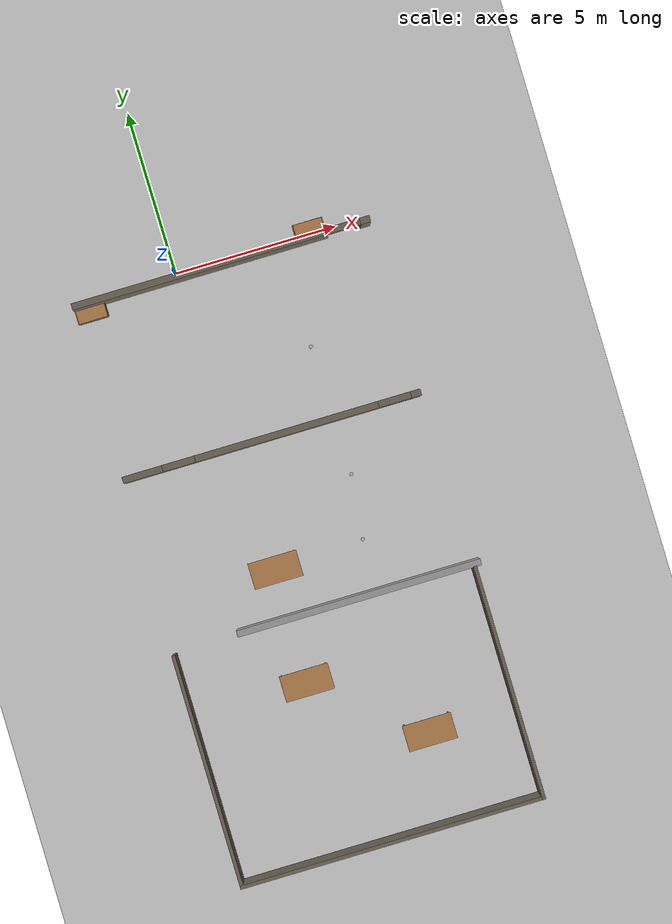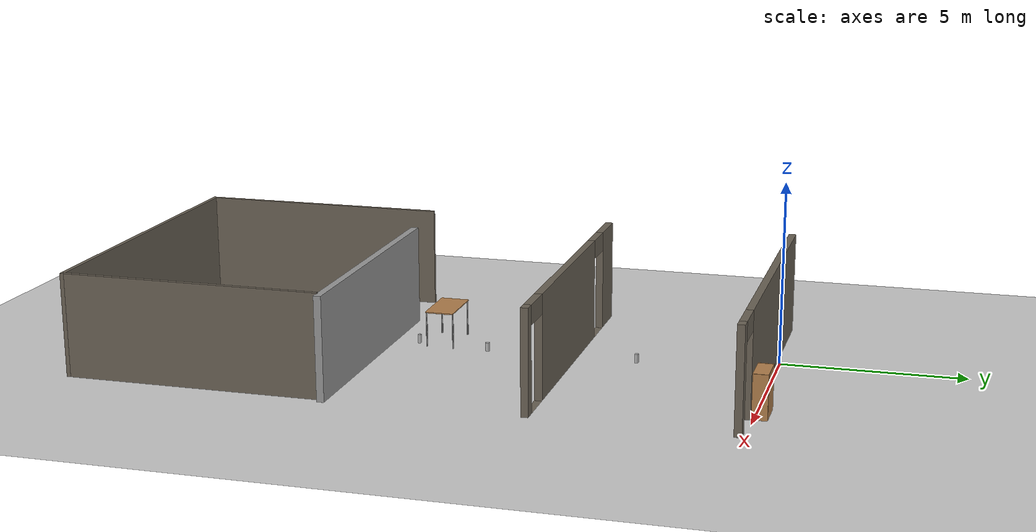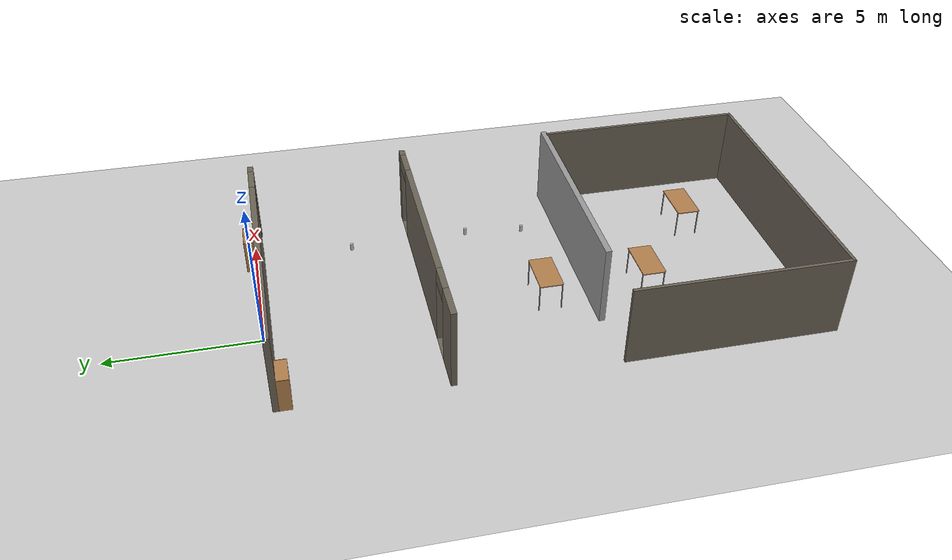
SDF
<sdf version="1.7">
 <world name="default">
  <model name="ground_plane">
   <static>1</static>
   <link name="link">
    <collision name="collision">
     <geometry><plane><normal>0 0 1</normal><size>100 100</size></plane></geometry>
     <surface><friction><ode><mu>100</mu><mu2>50</mu2></ode></friction></surface>
    </collision>
    <visual name="visual">
     <cast_shadows>0</cast_shadows>
     <geometry><plane><normal>0 0 1</normal><size>100 100</size></plane></geometry>
     <material>
      <script><uri>file://media/materials/scripts/gazebo.material</uri><name>Gazebo/Grey</name></script>
     </material>
    </visual>
   </link>
  </model>
  <model name="table">
   <static>1</static>
   <link name="link">
    <collision name="surface">
     <pose>0 0 1 0 -0 0</pose>
     <geometry><box><size>1.5 0.8 0.03</size></box></geometry>
     <surface><friction><ode><mu>0.6</mu><mu2>0.6</mu2></ode></friction></surface>
    </collision>
    <visual name="visual1">
     <pose>0 0 1 0 -0 0</pose>
     <geometry><box><size>1.5 0.8 0.03</size></box></geometry>
     <material>
      <script><uri>file://media/materials/scripts/gazebo.material</uri><name>Gazebo/Wood</name></script>
     </material>
    </visual>
    <collision name="front_left_leg">
     <pose>0.68 0.38 0.5 0 -0 0</pose>
     <geometry><cylinder><radius>0.02</radius><length>1</length></cylinder></geometry>
    </collision>
    <visual name="front_left_leg">
     <pose>0.68 0.38 0.5 0 -0 0</pose>
     <geometry><cylinder><radius>0.02</radius><length>1</length></cylinder></geometry>
     <material>
      <script><uri>file://media/materials/scripts/gazebo.material</uri><name>Gazebo/Grey</name></script>
     </material>
    </visual>
    <collision name="front_right_leg">
     <pose>0.68 -0.38 0.5 0 -0 0</pose>
     <geometry><cylinder><radius>0.02</radius><length>1</length></cylinder></geometry>
    </collision>
    <visual name="front_right_leg">
     <pose>0.68 -0.38 0.5 0 -0 0</pose>
     <geometry><cylinder><radius>0.02</radius><length>1</length></cylinder></geometry>
     <material>
      <script><uri>file://media/materials/scripts/gazebo.material</uri><name>Gazebo/Grey</name></script>
     </material>
    </visual>
    <collision name="back_right_leg">
     <pose>-0.68 -0.38 0.5 0 -0 0</pose>
     <geometry><cylinder><radius>0.02</radius><length>1</length></cylinder></geometry>
    </collision>
    <visual name="back_right_leg">
     <pose>-0.68 -0.38 0.5 0 -0 0</pose>
     <geometry><cylinder><radius>0.02</radius><length>1</length></cylinder></geometry>
     <material>
      <script><uri>file://media/materials/scripts/gazebo.material</uri><name>Gazebo/Grey</name></script>
     </material>
    </visual>
    <collision name="back_left_leg">
     <pose>-0.68 0.38 0.5 0 -0 0</pose>
     <geometry><cylinder><radius>0.02</radius><length>1</length></cylinder></geometry>
    </collision>
    <visual name="back_left_leg">
     <pose>-0.68 0.38 0.5 0 -0 0</pose>
     <geometry><cylinder><radius>0.02</radius><length>1</length></cylinder></geometry>
     <material>
      <script><uri>file://media/materials/scripts/gazebo.material</uri><name>Gazebo/Grey</name></script>
     </material>
    </visual>
   </link>
   <pose>0.349528 -9.32869 0 0 -0 0</pose>
  </model>
  <model name="beer">
   <link name="link">
    <pose>0 0 0.115 0 -0 0</pose>
    <inertial>
     <mass>0.39</mass>
     <inertia><ixx>0.00058</ixx><ixy>0</ixy><ixz>0</ixz><iyy>0.00058</iyy><iyz>0</iyz><izz>0.00019</izz></inertia>
    </inertial>
    <collision name="collision">
     <geometry><cylinder><radius>0.055</radius><length>0.23</length></cylinder></geometry>
    </collision>
    <visual name="visual">
     <geometry><cylinder><radius>0.055</radius><length>0.23</length></cylinder></geometry>
     <material>
      <script>
       <uri>model://beer/materials/scripts</uri>
       <uri>model://beer/materials/textures</uri>
       <name>Beer/Diffuse</name>
      </script>
     </material>
    </visual>
   </link>
   <pose>3.09991 -9.20004 0.77499 1e-06 -2.7e-05 0.03066</pose>
  </model>
  <model name="beer_0">
   <link name="link">
    <pose>0 0 0.115 0 -0 0</pose>
    <inertial>
     <mass>0.39</mass>
     <inertia><ixx>0.00058</ixx><ixy>0</ixy><ixz>0</ixz><iyy>0.00058</iyy><iyz>0</iyz><izz>0.00019</izz></inertia>
    </inertial>
    <collision name="collision">
     <geometry><cylinder><radius>0.055</radius><length>0.23</length></cylinder></geometry>
    </collision>
    <visual name="visual">
     <geometry><cylinder><radius>0.055</radius><length>0.23</length></cylinder></geometry>
     <material>
      <script>
       <uri>model://beer/materials/scripts</uri>
       <uri>model://beer/materials/textures</uri>
       <name>Beer/Diffuse</name>
      </script>
     </material>
    </visual>
   </link>
   <pose>3.2523 -3.266 0.774992 -1e-06 2.7e-05 0.018732</pose>
  </model>
  <model name="table_1">
   <static>1</static>
   <link name="link">
    <collision name="surface">
     <pose>0 0 1 0 -0 0</pose>
     <geometry><box><size>1.5 0.8 0.03</size></box></geometry>
     <surface><friction><ode><mu>0.6</mu><mu2>0.6</mu2></ode></friction></surface>
    </collision>
    <visual name="visual1">
     <pose>0 0 1 0 -0 0</pose>
     <geometry><box><size>1.5 0.8 0.03</size></box></geometry>
     <material>
      <script><uri>file://media/materials/scripts/gazebo.material</uri><name>Gazebo/Wood</name></script>
     </material>
    </visual>
    <collision name="front_left_leg">
     <pose>0.68 0.38 0.5 0 -0 0</pose>
     <geometry><cylinder><radius>0.02</radius><length>1</length></cylinder></geometry>
    </collision>
    <visual name="front_left_leg">
     <pose>0.68 0.38 0.5 0 -0 0</pose>
     <geometry><cylinder><radius>0.02</radius><length>1</length></cylinder></geometry>
     <material>
      <script><uri>file://media/materials/scripts/gazebo.material</uri><name>Gazebo/Grey</name></script>
     </material>
    </visual>
    <collision name="front_right_leg">
     <pose>0.68 -0.38 0.5 0 -0 0</pose>
     <geometry><cylinder><radius>0.02</radius><length>1</length></cylinder></geometry>
    </collision>
    <visual name="front_right_leg">
     <pose>0.68 -0.38 0.5 0 -0 0</pose>
     <geometry><cylinder><radius>0.02</radius><length>1</length></cylinder></geometry>
     <material>
      <script><uri>file://media/materials/scripts/gazebo.material</uri><name>Gazebo/Grey</name></script>
     </material>
    </visual>
    <collision name="back_right_leg">
     <pose>-0.68 -0.38 0.5 0 -0 0</pose>
     <geometry><cylinder><radius>0.02</radius><length>1</length></cylinder></geometry>
    </collision>
    <visual name="back_right_leg">
     <pose>-0.68 -0.38 0.5 0 -0 0</pose>
     <geometry><cylinder><radius>0.02</radius><length>1</length></cylinder></geometry>
     <material>
      <script><uri>file://media/materials/scripts/gazebo.material</uri><name>Gazebo/Grey</name></script>
     </material>
    </visual>
    <collision name="back_left_leg">
     <pose>-0.68 0.38 0.5 0 -0 0</pose>
     <geometry><cylinder><radius>0.02</radius><length>1</length></cylinder></geometry>
    </collision>
    <visual name="back_left_leg">
     <pose>-0.68 0.38 0.5 0 -0 0</pose>
     <geometry><cylinder><radius>0.02</radius><length>1</length></cylinder></geometry>
     <material>
      <script><uri>file://media/materials/scripts/gazebo.material</uri><name>Gazebo/Grey</name></script>
     </material>
    </visual>
   </link>
   <pose>3.37991 -15.2712 0 0 -0 0</pose>
  </model>
  <model name="beer_4">
   <link name="link">
    <pose>0 0 0.115 0 -0 0</pose>
    <inertial>
     <mass>0.39</mass>
     <inertia><ixx>0.00058</ixx><ixy>0</ixy><ixz>0</ixz><iyy>0.00058</iyy><iyz>0</iyz><izz>0.00019</izz></inertia>
    </inertial>
    <collision name="collision">
     <geometry><cylinder><radius>0.055</radius><length>0.23</length></cylinder></geometry>
    </collision>
    <visual name="visual">
     <geometry><cylinder><radius>0.055</radius><length>0.23</length></cylinder></geometry>
     <material>
      <script>
       <uri>model://beer/materials/scripts</uri>
       <uri>model://beer/materials/textures</uri>
       <name>Beer/Diffuse</name>
      </script>
     </material>
    </visual>
   </link>
   <pose>3.32342 -7.24272 0.775003 4.6e-05 3e-06 0.027947</pose>
  </model>
  <model name="bookshelf_0">
   <static>1</static>
   <link name="link">
    <inertial><mass>1</mass></inertial>
    <collision name="back">
     <pose>0 0.005 0.6 0 -0 0</pose>
     <geometry><box><size>0.9 0.01 1.2</size></box></geometry>
    </collision>
    <visual name="visual1">
     <pose>0 0.005 0.6 0 -0 0</pose>
     <geometry><box><size>0.9 0.01 1.2</size></box></geometry>
     <material>
      <script><uri>file://media/materials/scripts/gazebo.material</uri><name>Gazebo/Wood</name></script>
     </material>
    </visual>
    <collision name="left_side">
     <pose>0.45 -0.195 0.6 0 -0 0</pose>
     <geometry><box><size>0.02 0.4 1.2</size></box></geometry>
    </collision>
    <visual name="visual2">
     <pose>0.45 -0.195 0.6 0 -0 0</pose>
     <geometry><box><size>0.02 0.4 1.2</size></box></geometry>
     <material>
      <script><uri>file://media/materials/scripts/gazebo.material</uri><name>Gazebo/Wood</name></script>
     </material>
    </visual>
    <collision name="right_side">
     <pose>-0.45 -0.195 0.6 0 -0 0</pose>
     <geometry><box><size>0.02 0.4 1.2</size></box></geometry>
    </collision>
    <visual name="visual3">
     <pose>-0.45 -0.195 0.6 0 -0 0</pose>
     <geometry><box><size>0.02 0.4 1.2</size></box></geometry>
     <material>
      <script><uri>file://media/materials/scripts/gazebo.material</uri><name>Gazebo/Wood</name></script>
     </material>
    </visual>
    <collision name="bottom">
     <pose>0 -0.195 0.03 0 -0 0</pose>
     <geometry><box><size>0.88 0.4 0.06</size></box></geometry>
    </collision>
    <visual name="visual4">
     <pose>0 -0.195 0.03 0 -0 0</pose>
     <geometry><box><size>0.88 0.4 0.06</size></box></geometry>
     <material>
      <script><uri>file://media/materials/scripts/gazebo.material</uri><name>Gazebo/Wood</name></script>
     </material>
    </visual>
    <collision name="top">
     <pose>0 -0.195 1.19 0 -0 0</pose>
     <geometry><box><size>0.88 0.4 0.02</size></box></geometry>
    </collision>
    <visual name="visual5">
     <pose>0 -0.195 1.19 0 -0 0</pose>
     <geometry><box><size>0.88 0.4 0.02</size></box></geometry>
     <material>
      <script><uri>file://media/materials/scripts/gazebo.material</uri><name>Gazebo/Wood</name></script>
     </material>
    </visual>
    <collision name="low_shelf">
     <pose>0 -0.195 0.43 0 -0 0</pose>
     <geometry><box><size>0.88 0.4 0.02</size></box></geometry>
    </collision>
    <visual name="visual6">
     <pose>0 -0.195 0.43 0 -0 0</pose>
     <geometry><box><size>0.88 0.4 0.02</size></box></geometry>
     <material>
      <script><uri>file://media/materials/scripts/gazebo.material</uri><name>Gazebo/Wood</name></script>
     </material>
    </visual>
    <collision name="high_shelf">
     <pose>0 -0.195 0.8 0 -0 0</pose>
     <geometry><box><size>0.88 0.4 0.02</size></box></geometry>
    </collision>
    <visual name="visual7">
     <pose>0 -0.195 0.8 0 -0 0</pose>
     <geometry><box><size>0.88 0.4 0.02</size></box></geometry>
     <material>
      <script><uri>file://media/materials/scripts/gazebo.material</uri><name>Gazebo/Wood</name></script>
     </material>
    </visual>
   </link>
   <pose>-2.72283 -0.27346 0 0 -0 0</pose>
  </model>
  <model name="cx">
   <pose>1.393 -9.0275 0 0 -0 0</pose>
   <link name="Wall_0">
    <pose>0.008998 8.85044 0 0 -0 0</pose>
    <visual name="Wall_0_Visual_0">
     <pose>-0.654815 0 1.416 0 -0 0</pose>
     <geometry><box><size>7.85937 0.2 2.832</size></box></geometry>
     <material>
      <script><uri>file://media/materials/scripts/gazebo.material</uri><name>Gazebo/Grey</name></script>
      <ambient>0.419608 0.388235 0.337255 1</ambient>
     </material>
     <meta><layer>0</layer></meta>
    </visual>
    <collision name="Wall_0_Collision_0">
     <geometry><box><size>7.85937 0.2 2.832</size></box></geometry>
     <pose>-0.654815 0 1.416 0 -0 0</pose>
    </collision>
    <visual name="Wall_0_Visual_1">
     <pose>4.42969 0 1.416 0 -0 0</pose>
     <geometry><box><size>0.30963 0.2 2.832</size></box></geometry>
     <material>
      <script><uri>file://media/materials/scripts/gazebo.material</uri><name>Gazebo/Grey</name></script>
      <ambient>0.419608 0.388235 0.337255 1</ambient>
     </material>
     <meta><layer>0</layer></meta>
    </visual>
    <collision name="Wall_0_Collision_1">
     <geometry><box><size>0.30963 0.2 2.832</size></box></geometry>
     <pose>4.42969 0 1.416 0 -0 0</pose>
    </collision>
    <visual name="Wall_0_Visual_2">
     <pose>3.77487 0 2.56575 0 -0 0</pose>
     <geometry><box><size>1 0.2 0.5325</size></box></geometry>
     <material>
      <script><uri>file://media/materials/scripts/gazebo.material</uri><name>Gazebo/Grey</name></script>
      <ambient>0.419608 0.388235 0.337255 1</ambient>
     </material>
     <meta><layer>0</layer></meta>
    </visual>
    <collision name="Wall_0_Collision_2">
     <geometry><box><size>1 0.2 0.5325</size></box></geometry>
     <pose>3.77487 0 2.56575 0 -0 0</pose>
    </collision>
   </link>
   <link name="Wall_14">
    <collision name="Wall_14_Collision">
     <geometry><box><size>7.174 0.11 2.83</size></box></geometry>
     <pose>0 0 1.415 0 -0 0</pose>
    </collision>
    <visual name="Wall_14_Visual">
     <pose>0 0 1.415 0 -0 0</pose>
     <geometry><box><size>7.174 0.11 2.83</size></box></geometry>
     <material>
      <script><uri>file://media/materials/scripts/gazebo.material</uri><name>Gazebo/Grey</name></script>
      <ambient>0.419608 0.388235 0.337255 1</ambient>
     </material>
     <meta><layer>0</layer></meta>
    </visual>
    <pose>4.637 -5.4405 0 0 -0 -1.5708</pose>
   </link>
   <link name="Wall_17">
    <collision name="Wall_17_Collision">
     <geometry><box><size>9.384 0.11 2.83</size></box></geometry>
     <pose>0 0 1.415 0 -0 0</pose>
    </collision>
    <visual name="Wall_17_Visual">
     <pose>0 0 1.415 0 -0 0</pose>
     <geometry><box><size>9.384 0.11 2.83</size></box></geometry>
     <material>
      <script><uri>file://media/materials/scripts/gazebo.material</uri><name>Gazebo/Grey</name></script>
      <ambient>0.419608 0.388235 0.337255 1</ambient>
     </material>
     <meta><layer>0</layer></meta>
    </visual>
    <pose>0 -8.9725 0 0 -0 0</pose>
   </link>
   <link name="Wall_5">
    <pose>-0.0085 3.5245 0 0 -0 0</pose>
    <visual name="Wall_5_Visual_0">
     <pose>-3.97687 0 1.415 0 -0 0</pose>
     <geometry><box><size>1.21427 0.2 2.83</size></box></geometry>
     <material>
      <script><uri>file://media/materials/scripts/gazebo.material</uri><name>Gazebo/Grey</name></script>
      <ambient>0.419608 0.388235 0.337255 1</ambient>
     </material>
     <meta><layer>0</layer></meta>
    </visual>
    <collision name="Wall_5_Collision_0">
     <geometry><box><size>1.21427 0.2 2.83</size></box></geometry>
     <pose>-3.97687 0 1.415 0 -0 0</pose>
    </collision>
    <visual name="Wall_5_Visual_1">
     <pose>0.452937 0 1.415 0 -0 0</pose>
     <geometry><box><size>5.64534 0.2 2.83</size></box></geometry>
     <material>
      <script><uri>file://media/materials/scripts/gazebo.material</uri><name>Gazebo/Grey</name></script>
      <ambient>0.419608 0.388235 0.337255 1</ambient>
     </material>
     <meta><layer>0</layer></meta>
    </visual>
    <collision name="Wall_5_Collision_1">
     <geometry><box><size>5.64534 0.2 2.83</size></box></geometry>
     <pose>0.452937 0 1.415 0 -0 0</pose>
    </collision>
    <visual name="Wall_5_Visual_2">
     <pose>4.4298 0 1.415 0 -0 0</pose>
     <geometry><box><size>0.308395 0.2 2.83</size></box></geometry>
     <material>
      <script><uri>file://media/materials/scripts/gazebo.material</uri><name>Gazebo/Grey</name></script>
      <ambient>0.419608 0.388235 0.337255 1</ambient>
     </material>
     <meta><layer>0</layer></meta>
    </visual>
    <collision name="Wall_5_Collision_2">
     <geometry><box><size>0.308395 0.2 2.83</size></box></geometry>
     <pose>4.4298 0 1.415 0 -0 0</pose>
    </collision>
    <visual name="Wall_5_Visual_3">
     <pose>-2.86973 0 0 0 -0 0</pose>
     <geometry><box><size>1 0.2 0</size></box></geometry>
     <material>
      <script><uri>file://media/materials/scripts/gazebo.material</uri><name>Gazebo/Grey</name></script>
      <ambient>0.419608 0.388235 0.337255 1</ambient>
     </material>
     <meta><layer>0</layer></meta>
    </visual>
    <collision name="Wall_5_Collision_3">
     <geometry><box><size>1 0.2 0</size></box></geometry>
     <pose>-2.86973 0 0 0 -0 0</pose>
    </collision>
    <visual name="Wall_5_Visual_4">
     <pose>3.77561 0 0 0 -0 0</pose>
     <geometry><box><size>1 0.2 0</size></box></geometry>
     <material>
      <script><uri>file://media/materials/scripts/gazebo.material</uri><name>Gazebo/Grey</name></script>
      <ambient>0.419608 0.388235 0.337255 1</ambient>
     </material>
     <meta><layer>0</layer></meta>
    </visual>
    <collision name="Wall_5_Collision_4">
     <geometry><box><size>1 0.2 0</size></box></geometry>
     <pose>3.77561 0 0 0 -0 0</pose>
    </collision>
    <visual name="Wall_5_Visual_5">
     <pose>-2.86973 0 2.565 0 -0 0</pose>
     <geometry><box><size>1 0.2 0.53</size></box></geometry>
     <material>
      <script><uri>file://media/materials/scripts/gazebo.material</uri><name>Gazebo/Grey</name></script>
      <ambient>0.419608 0.388235 0.337255 1</ambient>
     </material>
     <meta><layer>0</layer></meta>
    </visual>
    <collision name="Wall_5_Collision_5">
     <geometry><box><size>1 0.2 0.53</size></box></geometry>
     <pose>-2.86973 0 2.565 0 -0 0</pose>
    </collision>
    <visual name="Wall_5_Visual_6">
     <pose>3.77561 0 2.565 0 -0 0</pose>
     <geometry><box><size>1 0.2 0.53</size></box></geometry>
     <material>
      <script><uri>file://media/materials/scripts/gazebo.material</uri><name>Gazebo/Grey</name></script>
      <ambient>0.419608 0.388235 0.337255 1</ambient>
     </material>
     <meta><layer>0</layer></meta>
    </visual>
    <collision name="Wall_5_Collision_6">
     <geometry><box><size>1 0.2 0.53</size></box></geometry>
     <pose>3.77561 0 2.565 0 -0 0</pose>
    </collision>
   </link>
   <link name="Wall_7">
    <collision name="Wall_7_Collision">
     <geometry><box><size>7.174 0.11 2.83</size></box></geometry>
     <pose>0 0 1.415 0 -0 0</pose>
    </collision>
    <visual name="Wall_7_Visual">
     <pose>0 0 1.415 0 -0 0</pose>
     <geometry><box><size>7.174 0.11 2.83</size></box></geometry>
     <material>
      <script><uri>file://media/materials/scripts/gazebo.material</uri><name>Gazebo/Grey</name></script>
      <ambient>0.419608 0.388235 0.337255 1</ambient>
     </material>
     <meta><layer>0</layer></meta>
    </visual>
    <pose>-4.637 -5.4405 0 0 -0 -1.5708</pose>
   </link>
   <static>1</static>
  </model>
  <model name="grey_wall">
   <static>1</static>
   <link name="link">
    <pose>0 0 1.4 0 -0 0</pose>
    <collision name="collision"><geometry><box><size>7.5 0.2 2.8</size></box></geometry></collision>
    <visual name="visual">
     <cast_shadows>0</cast_shadows>
     <geometry><box><size>7.5 0.2 2.8</size></box></geometry>
     <material>
      <script>
       <uri>model://grey_wall/materials/scripts</uri>
       <uri>model://grey_wall/materials/textures</uri>
       <name>vrc/grey_wall</name>
      </script>
     </material>
    </visual>
   </link>
   <pose>2.48885 -10.8081 0 0 -0 0</pose>
  </model>
  <model name="bookshelf_1">
   <static>1</static>
   <link name="link">
    <inertial><mass>1</mass></inertial>
    <collision name="back">
     <pose>0 0.005 0.6 0 -0 0</pose>
     <geometry><box><size>0.9 0.01 1.2</size></box></geometry>
    </collision>
    <visual name="visual1">
     <pose>0 0.005 0.6 0 -0 0</pose>
     <geometry><box><size>0.9 0.01 1.2</size></box></geometry>
     <material>
      <script><uri>file://media/materials/scripts/gazebo.material</uri><name>Gazebo/Wood</name></script>
     </material>
    </visual>
    <collision name="left_side">
     <pose>0.45 -0.195 0.6 0 -0 0</pose>
     <geometry><box><size>0.02 0.4 1.2</size></box></geometry>
    </collision>
    <visual name="visual2">
     <pose>0.45 -0.195 0.6 0 -0 0</pose>
     <geometry><box><size>0.02 0.4 1.2</size></box></geometry>
     <material>
      <script><uri>file://media/materials/scripts/gazebo.material</uri><name>Gazebo/Wood</name></script>
     </material>
    </visual>
    <collision name="right_side">
     <pose>-0.45 -0.195 0.6 0 -0 0</pose>
     <geometry><box><size>0.02 0.4 1.2</size></box></geometry>
    </collision>
    <visual name="visual3">
     <pose>-0.45 -0.195 0.6 0 -0 0</pose>
     <geometry><box><size>0.02 0.4 1.2</size></box></geometry>
     <material>
      <script><uri>file://media/materials/scripts/gazebo.material</uri><name>Gazebo/Wood</name></script>
     </material>
    </visual>
    <collision name="bottom">
     <pose>0 -0.195 0.03 0 -0 0</pose>
     <geometry><box><size>0.88 0.4 0.06</size></box></geometry>
    </collision>
    <visual name="visual4">
     <pose>0 -0.195 0.03 0 -0 0</pose>
     <geometry><box><size>0.88 0.4 0.06</size></box></geometry>
     <material>
      <script><uri>file://media/materials/scripts/gazebo.material</uri><name>Gazebo/Wood</name></script>
     </material>
    </visual>
    <collision name="top">
     <pose>0 -0.195 1.19 0 -0 0</pose>
     <geometry><box><size>0.88 0.4 0.02</size></box></geometry>
    </collision>
    <visual name="visual5">
     <pose>0 -0.195 1.19 0 -0 0</pose>
     <geometry><box><size>0.88 0.4 0.02</size></box></geometry>
     <material>
      <script><uri>file://media/materials/scripts/gazebo.material</uri><name>Gazebo/Wood</name></script>
     </material>
    </visual>
    <collision name="low_shelf">
     <pose>0 -0.195 0.43 0 -0 0</pose>
     <geometry><box><size>0.88 0.4 0.02</size></box></geometry>
    </collision>
    <visual name="visual6">
     <pose>0 -0.195 0.43 0 -0 0</pose>
     <geometry><box><size>0.88 0.4 0.02</size></box></geometry>
     <material>
      <script><uri>file://media/materials/scripts/gazebo.material</uri><name>Gazebo/Wood</name></script>
     </material>
    </visual>
    <collision name="high_shelf">
     <pose>0 -0.195 0.8 0 -0 0</pose>
     <geometry><box><size>0.88 0.4 0.02</size></box></geometry>
    </collision>
    <visual name="visual7">
     <pose>0 -0.195 0.8 0 -0 0</pose>
     <geometry><box><size>0.88 0.4 0.02</size></box></geometry>
     <material>
      <script><uri>file://media/materials/scripts/gazebo.material</uri><name>Gazebo/Wood</name></script>
     </material>
    </visual>
   </link>
   <pose>4.19748 0.336312 0 0 -0 0</pose>
  </model>
  <model name="table_0">
   <static>1</static>
   <link name="link">
    <collision name="surface">
     <pose>0 0 1 0 -0 0</pose>
     <geometry><box><size>1.5 0.8 0.03</size></box></geometry>
     <surface><friction><ode><mu>0.6</mu><mu2>0.6</mu2></ode></friction></surface>
    </collision>
    <visual name="visual1">
     <pose>0 0 1 0 -0 0</pose>
     <geometry><box><size>1.5 0.8 0.03</size></box></geometry>
     <material>
      <script><uri>file://media/materials/scripts/gazebo.material</uri><name>Gazebo/Wood</name></script>
     </material>
    </visual>
    <collision name="front_left_leg">
     <pose>0.68 0.38 0.5 0 -0 0</pose>
     <geometry><cylinder><radius>0.02</radius><length>1</length></cylinder></geometry>
    </collision>
    <visual name="front_left_leg">
     <pose>0.68 0.38 0.5 0 -0 0</pose>
     <geometry><cylinder><radius>0.02</radius><length>1</length></cylinder></geometry>
     <material>
      <script><uri>file://media/materials/scripts/gazebo.material</uri><name>Gazebo/Grey</name></script>
     </material>
    </visual>
    <collision name="front_right_leg">
     <pose>0.68 -0.38 0.5 0 -0 0</pose>
     <geometry><cylinder><radius>0.02</radius><length>1</length></cylinder></geometry>
    </collision>
    <visual name="front_right_leg">
     <pose>0.68 -0.38 0.5 0 -0 0</pose>
     <geometry><cylinder><radius>0.02</radius><length>1</length></cylinder></geometry>
     <material>
      <script><uri>file://media/materials/scripts/gazebo.material</uri><name>Gazebo/Grey</name></script>
     </material>
    </visual>
    <collision name="back_right_leg">
     <pose>-0.68 -0.38 0.5 0 -0 0</pose>
     <geometry><cylinder><radius>0.02</radius><length>1</length></cylinder></geometry>
    </collision>
    <visual name="back_right_leg">
     <pose>-0.68 -0.38 0.5 0 -0 0</pose>
     <geometry><cylinder><radius>0.02</radius><length>1</length></cylinder></geometry>
     <material>
      <script><uri>file://media/materials/scripts/gazebo.material</uri><name>Gazebo/Grey</name></script>
     </material>
    </visual>
    <collision name="back_left_leg">
     <pose>-0.68 0.38 0.5 0 -0 0</pose>
     <geometry><cylinder><radius>0.02</radius><length>1</length></cylinder></geometry>
    </collision>
    <visual name="back_left_leg">
     <pose>-0.68 0.38 0.5 0 -0 0</pose>
     <geometry><cylinder><radius>0.02</radius><length>1</length></cylinder></geometry>
     <material>
      <script><uri>file://media/materials/scripts/gazebo.material</uri><name>Gazebo/Grey</name></script>
     </material>
    </visual>
   </link>
   <pose>0.289375 -12.8176 0 0 -0 0</pose>
  </model>
 </world>
</sdf>
